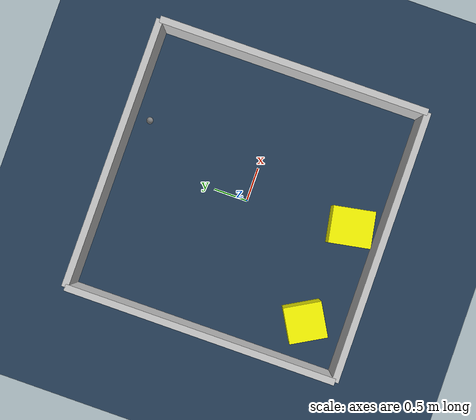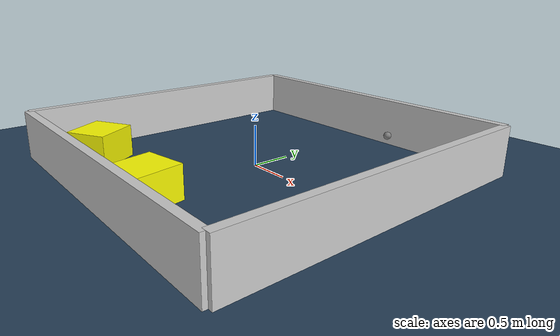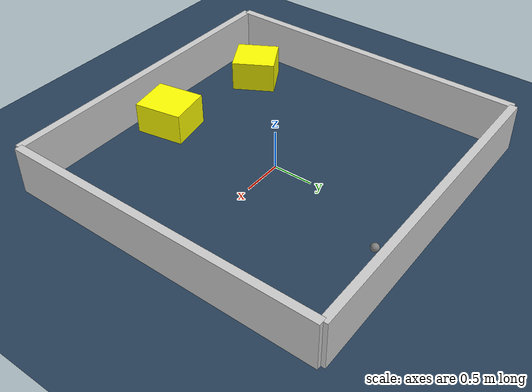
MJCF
<?xml version="1.0" ?>
<mujoco model="generated_environment">
  <option timestep="0.01" integrator="RK4" cone="elliptic"/>
  <default>
    <geom density="1"/>
  </default>
  <asset>
    <texture builtin="gradient" height="3072" rgb1="0.3 0.5 0.7" rgb2="0 0 0" type="skybox" width="512"/>
    <texture builtin="checker" height="300" mark="edge" markrgb="0.8 0.8 0.8" name="groundplane" rgb1="0.2 0.3 0.4" rgb2="0.1 0.2 0.3" type="2d" width="300"/>
    <material name="groundplane" reflectance="0.2" texrepeat="5 5" texture="groundplane" texuniform="true"/>
    <material name="robot" rgba="0.0 1.0 0.0 1"/>
  </asset>
  <worldbody>
    <light dir="0 0 -1" directional="true" pos="0 0 1.5"/>
    <geom condim="4" friction="1.0 0.005 0.001" material="groundplane" name="floor" size="0 0 0.05" type="plane"/>
    <body name="walls">
      <geom name="wall_1" condim="4" pos="-2.0 0.0 0.3" rgba="0.800000011920929 0.800000011920929 0.800000011920929 1.0" size="0.05 2.0 0.3" type="box"/>
      <geom name="wall_2" condim="4" pos="2.0 0.0 0.3" rgba="0.800000011920929 0.800000011920929 0.800000011920929 1.0" size="0.05 2.0 0.3" type="box"/>
      <geom name="wall_3" condim="4" pos="0.0 -2.0 0.3" rgba="0.800000011920929 0.800000011920929 0.800000011920929 1.0" size="2.0 0.05 0.3" type="box"/>
      <geom name="wall_4" condim="4" pos="0.0 2.0 0.3" rgba="0.800000011920929 0.800000011920929 0.800000011920929 1.0" size="2.0 0.05 0.3" type="box"/>
    </body>
    <body name="robot">
      <joint name="joint_x" type="slide" pos="0 0 0" axis="1 0 0"/>
      <joint name="joint_y" type="slide" pos="0 0 0" axis="0 1 0"/>
      <geom name="robot" type="sphere" pos="0.6279138244103892 1.7164808461236762 0.2" size="0.05" mass="5." friction="1.0 0.005 0.0001" condim="4"/>
      <site name="sensor_ball"/>
    </body>
    <body name="obstacle_1_movable">
      <geom name="obstacle_1_movable" condim="4" pos="-1.374800963951254 -1.3638672032283377 0.2" euler="0 0 209.56293854709781" friction="1.0 0.005 0.001" rgba="1 1 0 1" size="0.26205709097151997 0.27872544965833496 0.2" type="box" mass="0.1"/>
      <joint type="free"/>
    </body>
    <body name="obstacle_2_movable">
      <geom name="obstacle_2_movable" condim="4" pos="0.1300178245785122 -1.5453750119002578 0.2" euler="0 0 100.20137269091481" friction="1.0 0.005 0.001" rgba="1 1 0 1" size="0.3075894429669842 0.26962199155286554 0.2" type="box" mass="0.1"/>
      <joint type="free"/>
    </body>
  </worldbody>
  <actuator>
    <motor name="actuator_x" joint="joint_x" gear="1" ctrlrange="-1 1"/>
    <motor name="actuator_y" joint="joint_y" gear="1" ctrlrange="-1 1"/>
  </actuator>
</mujoco>
